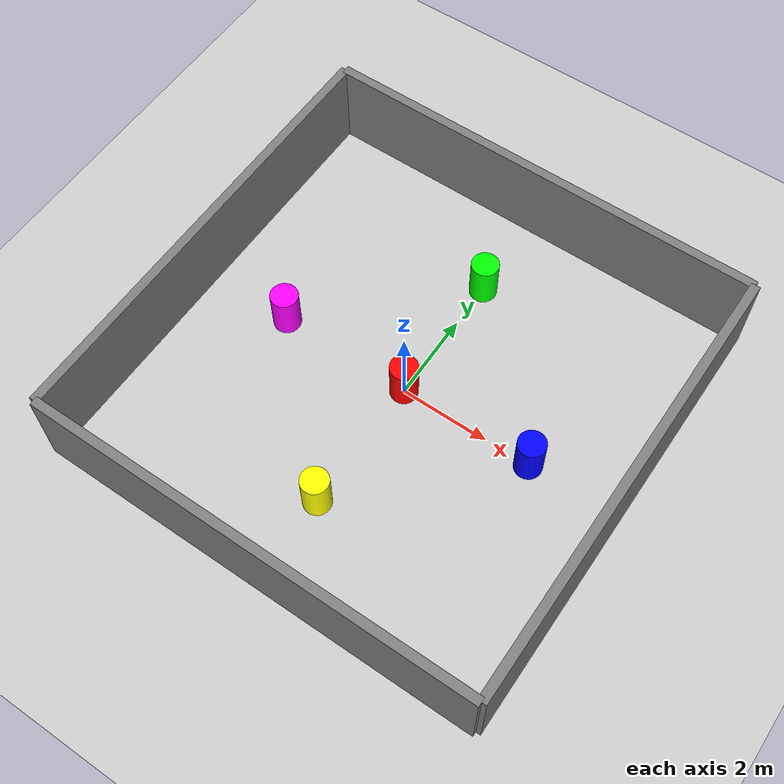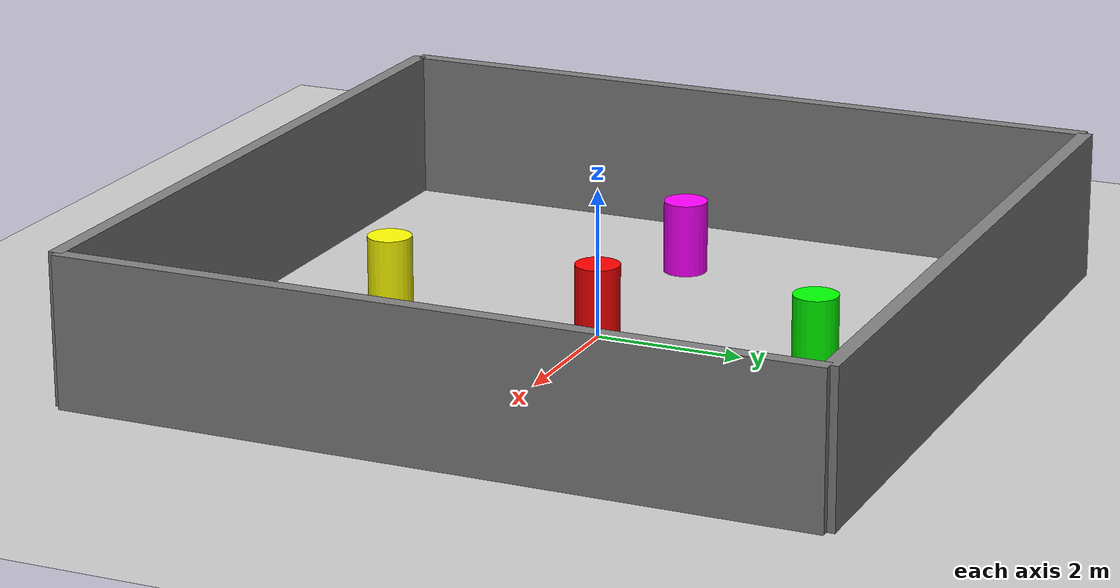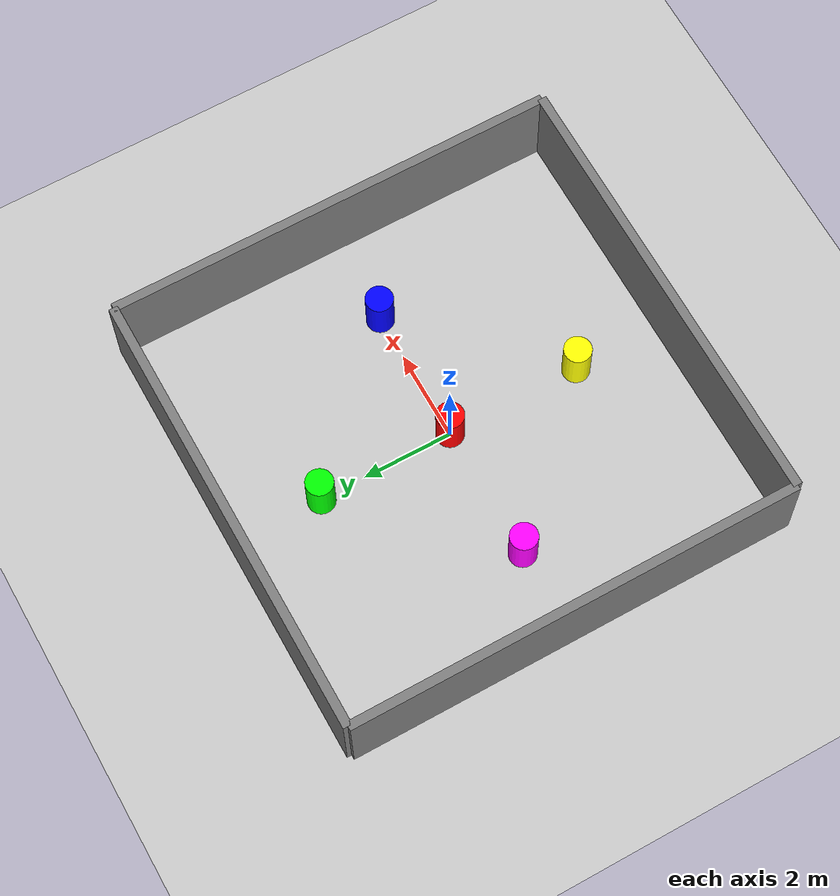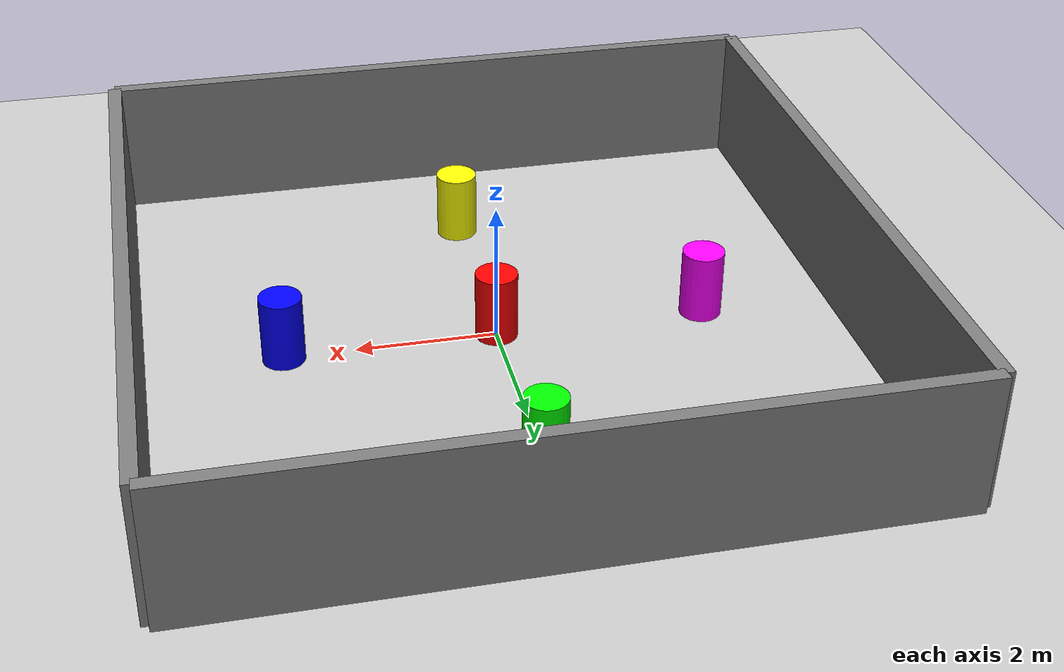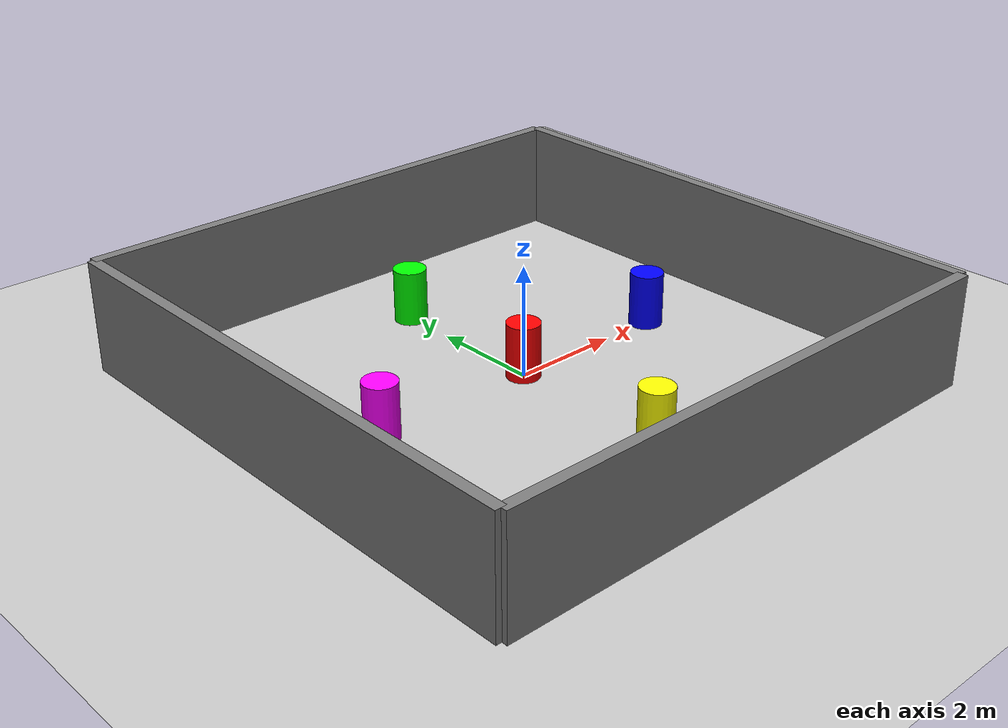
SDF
<?xml version="1.0" ?>
<sdf version="1.6">
  <world name="default">

    <!-- ROS2 Gazebo Plugins -->
    <plugin name="gazebo_ros_init" filename="libgazebo_ros_init.so"/>
    <plugin name="gazebo_ros_factory" filename="libgazebo_ros_factory.so"/>

    <!-- Ground plane -->
    <include>
      <uri>model://ground_plane</uri>
    </include>

    <!-- Global light source -->
    <include>
      <uri>model://sun</uri>
    </include>

    <!-- Physics -->
    <physics type="ode">
      <real_time_update_rate>1000.0</real_time_update_rate>
      <max_step_size>0.001</max_step_size>
      <real_time_factor>1</real_time_factor>
    </physics>

    <!-- Cylindrical Landmark 1 (Center) -->
    <model name="cylinder_1">
      <static>true</static>
      <pose>0 0 0.5 0 0 0</pose>
      <link name="link">
        <collision name="collision">
          <geometry>
            <cylinder>
              <radius>0.3</radius>
              <length>1.0</length>
            </cylinder>
          </geometry>
        </collision>
        <visual name="visual">
          <geometry>
            <cylinder>
              <radius>0.3</radius>
              <length>1.0</length>
            </cylinder>
          </geometry>
          <material>
            <ambient>1 0 0 1</ambient>
            <diffuse>1 0 0 1</diffuse>
          </material>
        </visual>
      </link>
    </model>

    <!-- Cylindrical Landmark 2 (North) -->
    <model name="cylinder_2">
      <static>true</static>
      <pose>0 3 0.5 0 0 0</pose>
      <link name="link">
        <collision name="collision">
          <geometry>
            <cylinder>
              <radius>0.3</radius>
              <length>1.0</length>
            </cylinder>
          </geometry>
        </collision>
        <visual name="visual">
          <geometry>
            <cylinder>
              <radius>0.3</radius>
              <length>1.0</length>
            </cylinder>
          </geometry>
          <material>
            <ambient>0 1 0 1</ambient>
            <diffuse>0 1 0 1</diffuse>
          </material>
        </visual>
      </link>
    </model>

    <!-- Cylindrical Landmark 3 (East) -->
    <model name="cylinder_3">
      <static>true</static>
      <pose>3 0 0.5 0 0 0</pose>
      <link name="link">
        <collision name="collision">
          <geometry>
            <cylinder>
              <radius>0.3</radius>
              <length>1.0</length>
            </cylinder>
          </geometry>
        </collision>
        <visual name="visual">
          <geometry>
            <cylinder>
              <radius>0.3</radius>
              <length>1.0</length>
            </cylinder>
          </geometry>
          <material>
            <ambient>0 0 1 1</ambient>
            <diffuse>0 0 1 1</diffuse>
          </material>
        </visual>
      </link>
    </model>

    <!-- Cylindrical Landmark 4 (South) -->
    <model name="cylinder_4">
      <static>true</static>
      <pose>0 -3 0.5 0 0 0</pose>
      <link name="link">
        <collision name="collision">
          <geometry>
            <cylinder>
              <radius>0.3</radius>
              <length>1.0</length>
            </cylinder>
          </geometry>
        </collision>
        <visual name="visual">
          <geometry>
            <cylinder>
              <radius>0.3</radius>
              <length>1.0</length>
            </cylinder>
          </geometry>
          <material>
            <ambient>1 1 0 1</ambient>
            <diffuse>1 1 0 1</diffuse>
          </material>
        </visual>
      </link>
    </model>

    <!-- Cylindrical Landmark 5 (West) -->
    <model name="cylinder_5">
      <static>true</static>
      <pose>-3 0 0.5 0 0 0</pose>
      <link name="link">
        <collision name="collision">
          <geometry>
            <cylinder>
              <radius>0.3</radius>
              <length>1.0</length>
            </cylinder>
          </geometry>
        </collision>
        <visual name="visual">
          <geometry>
            <cylinder>
              <radius>0.3</radius>
              <length>1.0</length>
            </cylinder>
          </geometry>
          <material>
            <ambient>1 0 1 1</ambient>
            <diffuse>1 0 1 1</diffuse>
          </material>
        </visual>
      </link>
    </model>

    <!-- Boundary Walls (Square Enclosure) -->
    <!-- North Wall -->
    <model name="wall_north">
      <static>true</static>
      <pose>0 5 1 0 0 0</pose>
      <link name="link">
        <collision name="collision">
          <geometry>
            <box>
              <size>10 0.2 2</size>
            </box>
          </geometry>
        </collision>
        <visual name="visual">
          <geometry>
            <box>
              <size>10 0.2 2</size>
            </box>
          </geometry>
          <material>
            <ambient>0.5 0.5 0.5 1</ambient>
            <diffuse>0.5 0.5 0.5 1</diffuse>
          </material>
        </visual>
      </link>
    </model>

    <!-- South Wall -->
    <model name="wall_south">
      <static>true</static>
      <pose>0 -5 1 0 0 0</pose>
      <link name="link">
        <collision name="collision">
          <geometry>
            <box>
              <size>10 0.2 2</size>
            </box>
          </geometry>
        </collision>
        <visual name="visual">
          <geometry>
            <box>
              <size>10 0.2 2</size>
            </box>
          </geometry>
          <material>
            <ambient>0.5 0.5 0.5 1</ambient>
            <diffuse>0.5 0.5 0.5 1</diffuse>
          </material>
        </visual>
      </link>
    </model>

    <!-- East Wall -->
    <model name="wall_east">
      <static>true</static>
      <pose>5 0 1 0 0 0</pose>
      <link name="link">
        <collision name="collision">
          <geometry>
            <box>
              <size>0.2 10 2</size>
            </box>
          </geometry>
        </collision>
        <visual name="visual">
          <geometry>
            <box>
              <size>0.2 10 2</size>
            </box>
          </geometry>
          <material>
            <ambient>0.5 0.5 0.5 1</ambient>
            <diffuse>0.5 0.5 0.5 1</diffuse>
          </material>
        </visual>
      </link>
    </model>

    <!-- West Wall -->
    <model name="wall_west">
      <static>true</static>
      <pose>-5 0 1 0 0 0</pose>
      <link name="link">
        <collision name="collision">
          <geometry>
            <box>
              <size>0.2 10 2</size>
            </box>
          </geometry>
        </collision>
        <visual name="visual">
          <geometry>
            <box>
              <size>0.2 10 2</size>
            </box>
          </geometry>
          <material>
            <ambient>0.5 0.5 0.5 1</ambient>
            <diffuse>0.5 0.5 0.5 1</diffuse>
          </material>
        </visual>
      </link>
    </model>

  </world>
</sdf>
